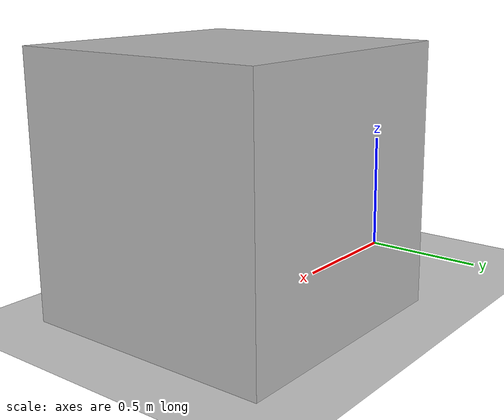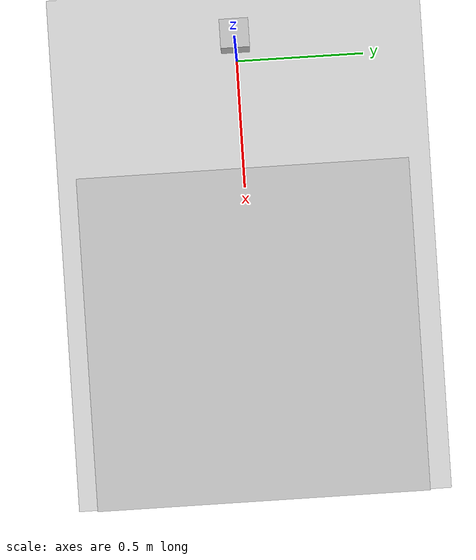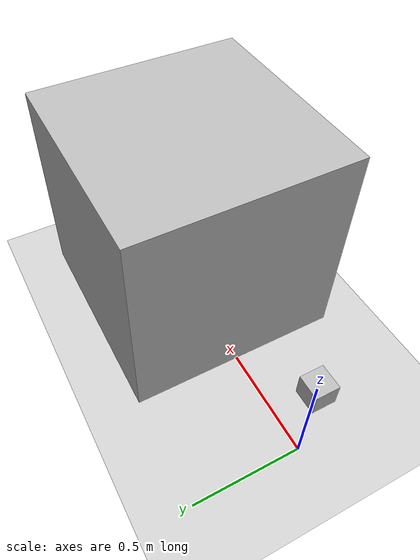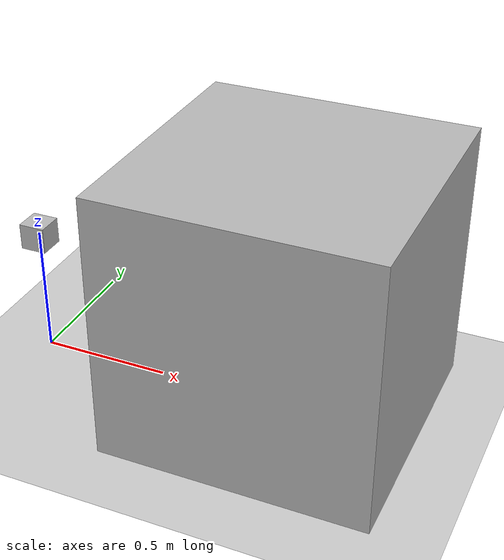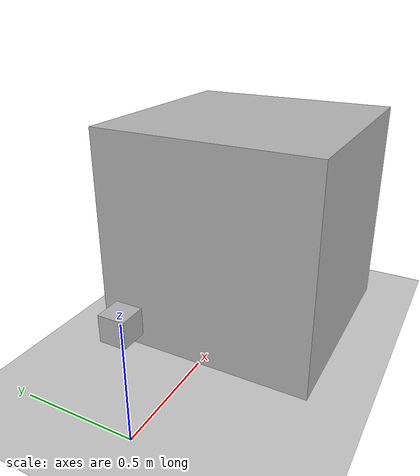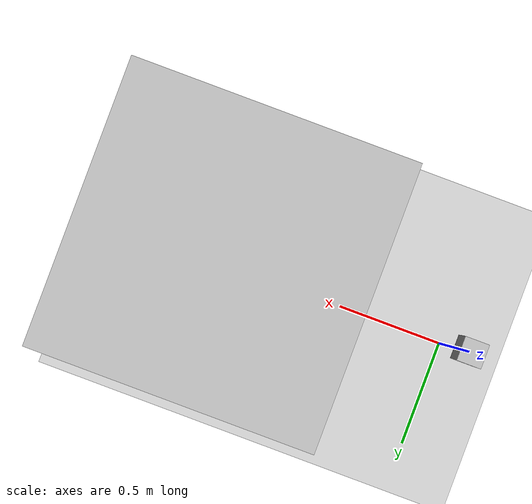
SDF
<?xml version="1.0" ?>
<sdf version="1.6">
  <world name="default">
    <include>
      <uri>model://ground_plane</uri>
    </include>
    <include>
      <uri>model://sun</uri>
    </include>

  <model name="camera">
    <pose>0 0 0.5 0 0 0</pose>
    <static>true</static>
    <link name="link">
      <collision name="collision">
        <geometry>
          <box>
            <size>0.1 0.1 0.1</size>
          </box>
        </geometry>
      </collision>
      <visual name="visual">
        <geometry>
          <box>
            <size>0.1 0.1 0.1</size>
          </box>
        </geometry>
      </visual>
      <sensor name="camera" type="camera">
        <camera>
          <horizontal_fov>1.047</horizontal_fov>
          <image>
            <width>10</width>
            <height>10</height>
          </image>
          <clip>
            <near>0.1</near>
            <far>100</far>
          </clip>
        </camera>
        <always_on>1</always_on>
        <update_rate>10</update_rate>
        <visualize>false</visualize>
      </sensor>
    </link>
  </model>

    <model name="box">
      <pose>1.0 0 0.5 0 0 0</pose>
      <link name="link">
        <collision name="collision">
          <geometry>
            <box>
              <size>1 1 1</size>
            </box>
          </geometry>
        </collision>
        <visual name="visual">
          <geometry>
            <box>
              <size>1 1 1</size>
            </box>
          </geometry>
          <material>
            <script>
              <uri>file://media/materials/scripts/shader_test.material</uri>
              <name>Gazebo/ShaderTest</name>
            </script>
          </material>
        </visual>
      </link>
    </model>
  </world>
</sdf>
